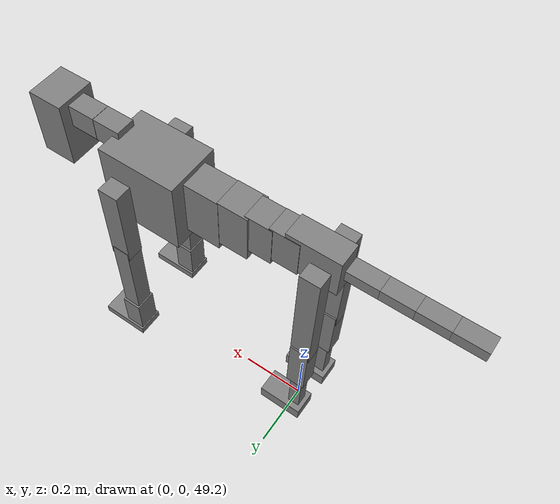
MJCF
<mujoco model="dog">

    <default>
        <joint armature="0.02" stiffness="1" damping="0.2" limited="true"/>
        <geom condim="3" friction="1 0.05 0.05" margin="0.01"/>
        <motor ctrllimited="true" ctrlrange="-1.0 1.0" forcelimited="true" gear="50"/>
    </default>

    <compiler inertiafromgeom="true" angle="radian"/>

    <option timestep="0.016" iterations="50" tolerance="1e-10" solver="Newton" jacobian="dense" cone="pyramidal"/>

    <size nconmax="20000" njmax="60000" nstack="5000000"/>
    <visual>
        <map force="0.1" zfar="30"/>
        <rgba haze="0.15 0.25 0.35 1"/>
        <quality shadowsize="2048"/>
        <global offwidth="800" offheight="800"/>
    </visual>

    <asset>
        <texture type="skybox" builtin="gradient" rgb1="0.3 0.5 0.7" rgb2="0 0 0" width="512" height="512"/>
        <texture name="texplane" type="2d" builtin="checker" rgb1=".2 .3 .4" rgb2=".1 0.15 0.2" width="512" height="512"
                 mark="cross" markrgb=".8 .8 .8"/>
        <texture name="texgeom" type="cube" builtin="flat" mark="cross" width="127" height="1278" rgb1="0.8 0.6 0.4"
                 rgb2="0.8 0.6 0.4" markrgb="1 1 1" random="0.01"/>

        <material name="matplane" reflectance="0.3" texture="texplane" texrepeat="1 1" texuniform="true"/>
        <material name="matgeom" texture="texgeom" texuniform="true" rgba="0.8 0.6 .4 1"/>
    </asset>

    <worldbody>
        <geom name="floor" pos="0 0 0" size="0 0 .25" type="plane" material="matplane" condim="3"/>

        <light directional="false" diffuse=".2 .2 .2" specular="0 0 0" pos="0 0 5" dir="0 0 -1" castshadow="false"/>
        <light mode="targetbodycom" target="torso" directional="false" diffuse=".8 .8 .8" specular="0.3 0.3 0.3"
               pos="0 0 4.0" dir="0 0 -1"/>

        <body name="root" pos="0 0 50">
            <freejoint name="root_1"/>
            <geom type="box" pos="0 0 -0.02" size="0.0774  0.0358  0.063" density="2030"/>

            <body name="spine1" pos="0.054 0 0">
                <joint name="spine1_y" axis="0 1 0" range="0 0.7" limited="true"/>
                <geom type="box" pos="0.02375 0 -0.03" size="0.04375  0.0375  0.05985" density="2030"/>

                <body name="spine2" pos="0.0612 0 0">
                    <joint name="spine2_y" axis="0 1 0" range="-0.15 0.15" limited="true"/>
                    <geom type="box" pos="0.03555  0  -0.04" size="0.04055  0.039  0.06615" density="2030"/>

                    <body name="spine3" pos="0.0730 0 0">
                        <joint name="spine3_y" axis="0 1 0" range="-0.15 0.15" limited="true"/>
                        <geom type="box" pos="0.03555  0  -0.057" size="0.04555  0.0445  0.081" density="2030"/>

                        <body name="spine4" pos="0.0780 0 0">
                            <joint name="spine4_y" axis="0 1 0" range="-0.15 0.15" limited="true"/>
                            <geom type="box" pos="0.05265  0  -0.07" size="0.05265  0.045  0.09135" density="2030"/>

                            <body name="torso" pos="0.1082 0 0">
                                <joint name="torso_y" axis="0 1 0" range="-0.15 0.15" limited="true"/>
                                <geom type="box" pos="0.11925  0  -0.085" size="0.11925  0.085  0.11745"
                                      density="2030"/>

                                <body name="neck1" pos="0.2160  0   0.0180">
                                    <joint name="neck1_y" axis="0 1 0" range="-1.2  -1" limited="true"/>
                                    <geom type="box" pos="0.0423  0  0" size="0.0423  0.03  0.036" density="2325"/>

                                    <body name="neck2" pos="0.0853  0  0">
                                        <joint name="neck2_y" axis="0 1 0" range="0.1  0" limited="true"/>
                                        <geom type="box" pos="0.0423  0  0" size="0.0423  0.03  0.036" density="2325"/>

                                        <body name="head" pos="0.0853  0  0">
                                            <joint name="head_y" axis="0 1 0" range="-0.3  -0.2" limited="true"/>
                                            <geom type="box" pos="0.0531  0  -0.055" size="0.0531  0.06  0.1044"
                                                  density="4030"/>

                                        </body>
                                    </body>
                                </body>

                                <body name="front_shoulder" pos="0.156  0   -0.0480">
                                    <joint name="front_shoulder_y" axis="0 1 0" range="-1 1.5" limited="true"/>
                                    <geom type="box" pos="0 0.13 -0.1068" size="0.0306  0.0261  0.1335" density="1158"/>
                                    <geom type="box" pos="0 -0.13 -0.1068" size="0.0306  0.0261  0.1335"
                                          density="1158"/>

                                    <body name="front_elbow" pos="0  0  -0.2136">
                                        <joint name="front_elbow_y" axis="0 1 0" range="-2 0" limited="true"/>
                                        <geom type="box" pos="0 0.13 -0.1457" size="0.0265  0.0271  0.1457"
                                              density="1081"/>
                                        <geom type="box" pos="0 -0.13 -0.1457" size="0.0265  0.0271  0.1457"
                                              density="1081"/>

                                        <body name="front_wrist" pos="0  0  -0.2915">
                                            <joint name="front_wrist_y" axis="0 1 0" range="-0.2 0" limited="true"/>
                                            <geom type="box" pos="0 0.13 -0.0600" size="0.0301  0.0335  0.0732"
                                                  density="1664"/>
                                            <geom type="box" pos="0 -0.13 -0.0600" size="0.0301  0.0335  0.0732"
                                                  density="1664"/>

                                            <body name="front_finger_end" pos="0  0  -0.1201">
                                                <joint name="front_finger_y" axis="0 1 0" range="-0.4 1"
                                                       limited="true"/>
                                                <geom type="box" pos="0.0403  0.13  0.0023"
                                                      size="0.0738  0.0403  0.0127" density="1515"/>
                                                <geom type="box" pos="0.0403  -0.13  0.0023"
                                                      size="0.0738  0.0403  0.0127" density="1515"/>

                                            </body>

                                        </body>
                                    </body>
                                </body>

                            </body>
                        </body>
                    </body>
                </body>
            </body>

            <body name="back_hip" pos="-0.03 0 -0.018">
                <joint name="back_hip_y" axis="0 1 0" range="-1.5 0.3" limited="true"/>
                <geom type="box" pos="0 0.07 -0.1657" size="0.0294  0.0231  0.1885" density="1154"/>
                <geom type="box" pos="0 -0.07 -0.1657" size="0.0294  0.0231  0.1885" density="1154"/>

                <body name="back_knee" pos="0  0  -0.3313">
                    <joint name="back_knee_y" axis="0 1 0" range="0 2.8" limited="true"/>
                    <geom type="box" pos="0 0.07 -0.0814" size="0.0279  0.0275  0.0970" density="1227"/>
                    <geom type="box" pos="0 -0.07 -0.0814" size="0.0279  0.0275  0.0970" density="1227"/>

                    <body name="back_ankle" pos="0  0  -0.1628">
                        <joint name="back_ankle_y" axis="0 1 0" range="-2.2 0" limited="true"/>
                        <geom type="box" pos="0 0.07 -0.0917" size="0.0182  0.0182  0.1029" density="1284"/>
                        <geom type="box" pos="0 -0.07 -0.0917" size="0.0182  0.0182  0.1029" density="1284"/>

                        <body name="back_toe_end" pos="0  0  -0.1833">
                            <joint name="back_toe_y" axis="0 1 0" range="-0.4 1" limited="true"/>
                            <geom type="box" pos="0.0372  0.07  -0.0077" size="0.0681  0.0372  0.0227" density="1515"/>
                            <geom type="box" pos="0.0372  -0.07  -0.0077" size="0.0681  0.0372  0.0227" density="1515"/>

                        </body>
                    </body>
                </body>
            </body>

            <body name="tail1" pos="-0.074 0 -0.006">
                <joint name="tail1_y" axis="0 1 0" range="-0.2 0.2" limited="true"/>
                <geom type="box" pos="-0.0536  0  0" size="0.045  0.025  0.0175" density="1587"/>

                <body name="tail2" pos="-0.09 0 0">
                    <joint name="tail2_y" axis="0 1 0" range="-0.2 0.2" limited="true"/>
                    <geom type="box" pos="-0.0536  0  0" size="0.045  0.025  0.0175" density="1587"/>

                    <body name="tail3" pos="-0.09 0 0">
                        <joint name="tail3_y" axis="0 1 0" range="-0.2 0.2" limited="true"/>
                        <geom type="box" pos="-0.0536  0  0" size="0.045  0.025  0.0175" density="1587"/>

                        <body name="tail4" pos="-0.09 0 0">
                            <joint name="tail4_y" axis="0 1 0" range="-0.2 0.2" limited="true"/>
                            <geom type="box" pos="-0.0536  0  0" size="0.045  0.025  0.0175" density="1587"/>

                        </body>
                    </body>
                </body>
            </body>
        </body>
    </worldbody>

    <actuator>
        <motor joint="spine1_y" forcerange="-150 150     "/>
        <motor joint="spine2_y" forcerange="-150 150     "/>
        <motor joint="spine3_y" forcerange="-150 150     "/>
        <motor joint="spine4_y" forcerange="-150 150     "/>
        <motor joint="torso_y" forcerange="-150 150     "/>
        <motor joint="neck1_y" forcerange="-100 100       "/>
        <motor joint="neck2_y" forcerange="-100 100       "/>
        <motor joint="head_y" forcerange="-150 150       "/>
        <motor joint="front_shoulder_y" forcerange="-171.65 102.57"/>
        <motor joint="front_elbow_y" forcerange="-137.69 159.06"/>
        <motor joint="front_wrist_y" forcerange="-148.22 119.75"/>
        <motor joint="front_finger_y" forcerange="-89.06 85.69"/>
        <motor joint="back_hip_y" forcerange="-231.92 275.57"/>
        <motor joint="back_knee_y" forcerange="-366.20 234.04"/>
        <motor joint="back_angle_y" forcerange="-81.12 109.45"/>
        <motor joint="back_toe_y" forcerange="-93.47 123.84"/>
        <motor joint="tail1_y" forcerange="-50 50     "/>
        <motor joint="tail2_y" forcerange="-50 50     "/>
        <motor joint="tail3_y" forcerange="-50 50     "/>
        <motor joint="tail4_y" forcerange="-50 50     "/>
    </actuator>
</mujoco>
